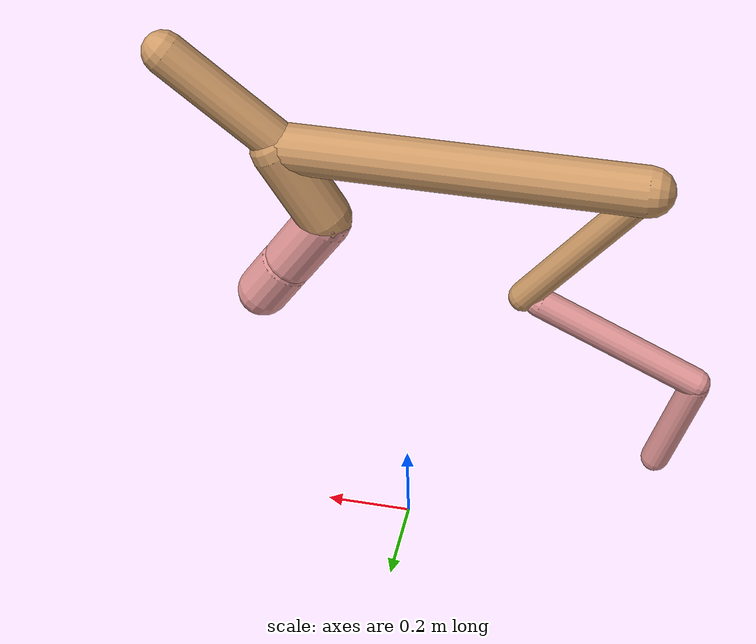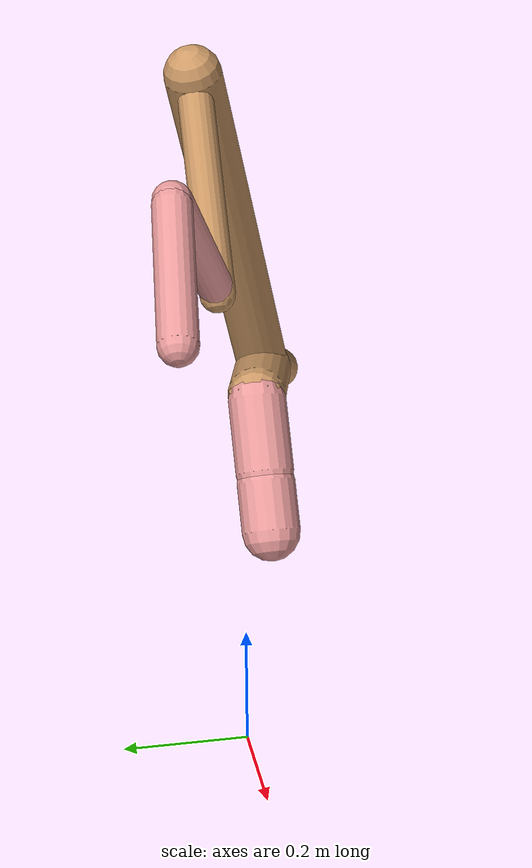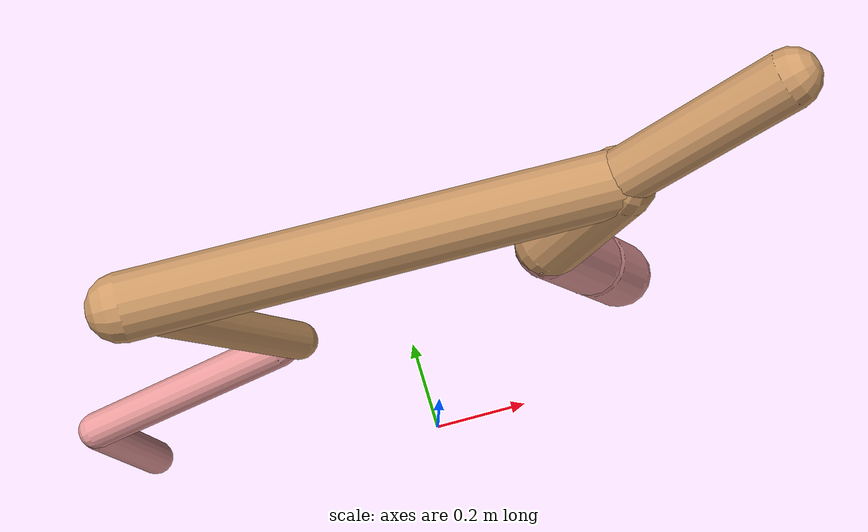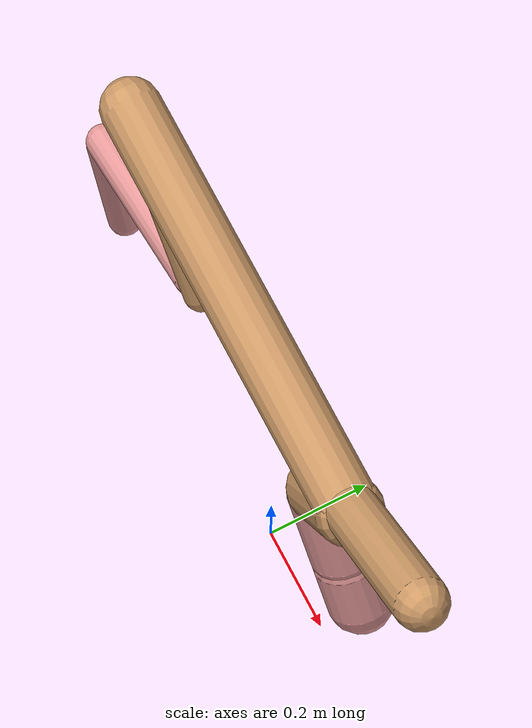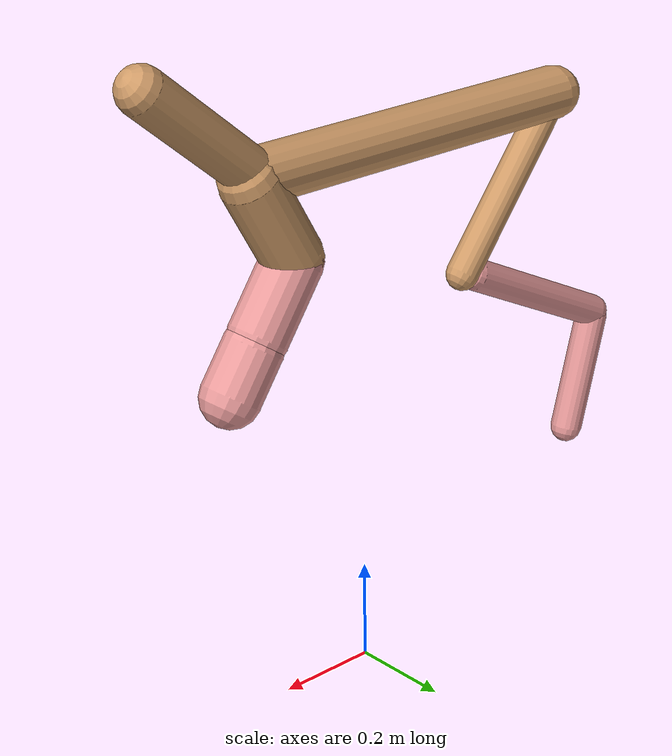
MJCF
<mujoco model="cheetah">
  <compiler angle="radian" coordinate="local" inertiafromgeom="true" settotalmass="14" />
  <default>
    <joint armature=".1" damping=".01" limited="true" solimplimit="0 .8 .03" solreflimit=".02 1" stiffness="8" />
    <geom conaffinity="0" condim="3" contype="1" friction="0.8 .1 .1" rgba="0.8 0.6 .4 1" solimp="0.0 0.8 0.01" solref="0.02 1" />
    <motor ctrllimited="true" ctrlrange="-1 1" />
  </default>
  <size nstack="300000" nuser_geom="1" />
  <option gravity="0 0 -9.81" timestep="0.01" />
  <worldbody>
    <body name="torso" pos="0.0 0.0 1.04986182093082">
      <joint armature="0" axis="1 0 0" damping="0" limited="false" name="ignorex" pos="0 0 0" stiffness="0" type="slide" />
      <joint armature="0" axis="0 0 1" damping="0" limited="false" name="ignorez" pos="0 0 0" stiffness="0" type="slide" />
      <joint armature="0" axis="0 1 0" damping="0" limited="false" name="ignorey" pos="0 0 0" stiffness="0" type="hinge" />
      <geom fromto="-0.5 0.0 0.0 0.26364458950831493 0.0 0.0" name="torso" size="0.052519224986230274" type="capsule" />
      <geom axisangle="0 1 0 .87" name="head" pos="0.3636445895083149 0.0 0.1" size="0.04527299470935089 0.15" type="capsule" />

      <body name="bthigh" pos="-.5 0 0">
        <joint axis="0 1 0" damping="6" name="bthigh" pos="0 0 0" range="-.52 1.05" stiffness="240" type="hinge" />
        <geom axisangle="0 1 0 -3.8" name="bthigh" pos="0.1262123770929139 0.0 -0.1640760902207881" size="0.0322 0.18799149494488887" type="capsule" />
        <body name="bshin" pos="0.21242475418582782 0.0 -0.31815218044157617">
          <joint axis="0 1 0" damping="4.5" name="bshin" pos="0 0 0" range="-.785 .785" stiffness="180" type="hinge" />
          <geom axisangle="0 1 0 -2.03" name="bshin" pos="-0.17977871937287318 0.0 -0.08988935968643659" rgba="0.9 0.6 0.6 1" size="0.0322 0.19447396028781608" type="capsule" />
          <body name="bfoot" pos="-0.35955743874574636 0.0 -0.17977871937287318">
            <joint axis="0 1 0" damping="3" name="bfoot" pos="0 0 0" range="-.4 .785" stiffness="120" type="hinge" />
            <geom axisangle="0 1 0 -.27" name="bfoot" pos="0.03823484413338585 0.0 -0.12362599603128092" rgba="0.9 0.6 0.6 1" size="0.0322 0.12187034844703142" type="capsule" />
            <inertial mass="10" />
          </body>
        </body>
      </body>
      <body name="fthigh" pos="0.26364458950831493 0.0 0.0">
        <joint axis="0 1 0" damping="4.5" name="fthigh" pos="0 0 0" range="-1.5 0.8" stiffness="180" type="hinge" />
        <geom axisangle="0 1 0 .52" name="fthigh" pos="-0.04989554608158897 0.0 -0.0855352218541525" size="0.05760419368593019 0.0931" type="capsule" />
        <body name="fshin" pos="-0.09979109216317794 0.0 -0.171070443708305">
          <joint axis="0 1 0" damping="3" name="fshin" pos="0 0 0" range="-1.2 1.1" stiffness="120" type="hinge" />
          <geom axisangle="0 1 0 -.6" name="fshin" pos="0.046381400387749405 0.0 -0.06422040053688378" rgba="0.9 0.6 0.6 1" size="0.05760419368593019 0.07419999999999999" type="capsule" />
          <body name="ffoot" pos="0.09276280077549881 0.0 -0.12844080107376757">
            <joint axis="0 1 0" damping="1.5" name="ffoot" pos="0 0 0" range="-3.1 -0.3" stiffness="60" type="hinge" />
            <geom axisangle="0 1 0 -.6" name="ffoot" pos="0.033644090582416526 0.0 -0.05233525201709238" rgba="0.9 0.6 0.6 1" size="0.05760419368593019 0.049" type="capsule" />
            <inertial mass="10" />
          </body>
        </body>
      </body>
    </body>
  </worldbody>
  <actuator>
    <motor gear="120" joint="bthigh" name="bthigh" />
    <motor gear="90" joint="bshin" name="bshin" />
    <motor gear="60" joint="bfoot" name="bfoot" />
    <motor gear="120" joint="fthigh" name="fthigh" />
    <motor gear="60" joint="fshin" name="fshin" />
    <motor gear="30" joint="ffoot" name="ffoot" />
  </actuator>
</mujoco>
